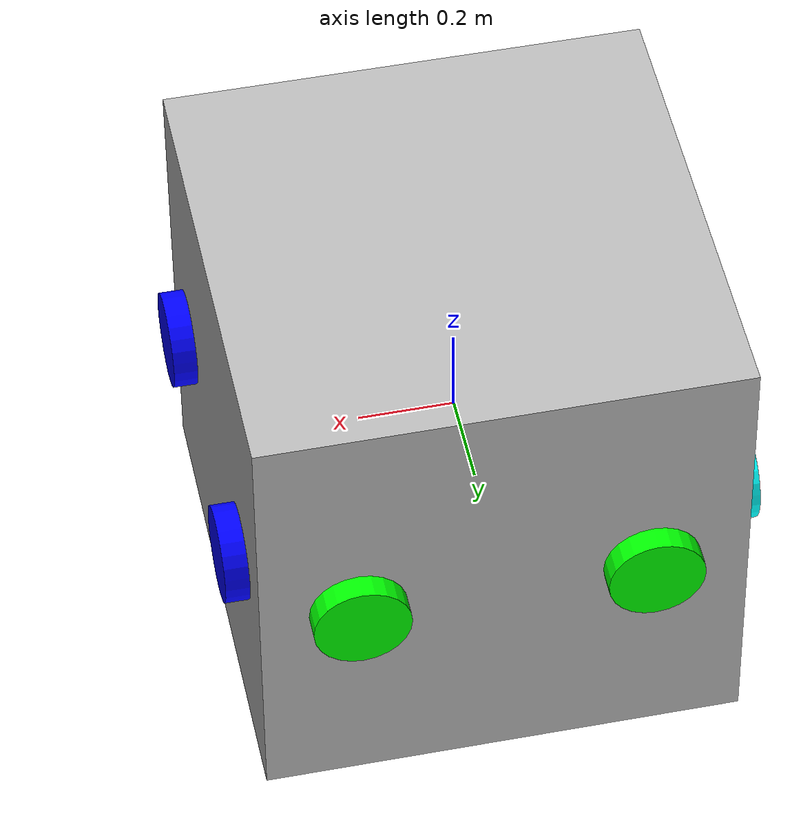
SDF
<?xml version="1.0" encoding="UTF-8"?>
<sdf version='1.9'>
<!-- This has eight thrusters and no arm-->
  <model name='free_flyer2'>
    <link name='base_link'>
      <inertial>
        <pose>0 0 0 0 0 0</pose>
        <mass>5</mass>
        <inertia>
          <ixx>10</ixx>
          <ixy>0</ixy>
          <ixz>0</ixz>
          <iyy>10</iyy>
          <iyz>0</iyz>
          <izz>10</izz>
        </inertia>
      </inertial>
      <collision name='base_link_collision'>
        <pose>0 0 0 0 0 0</pose>
        <geometry>
          <box>
            <size>1 1 1</size>
          </box>
        </geometry>
        <surface>
          <contact>
            <ode>
              <kp>100000</kp>
              <kd>100000</kd>
            </ode>
          </contact>
          <friction>
            <ode>
              <mu>0</mu>
              <mu2>0</mu2>
              <fdir1>0 0 1</fdir1>
            </ode>
          </friction>
        </surface>
      </collision>
      <visual name='base_link_visual'>
        <pose>0 0 0 0 0 0</pose>
        <geometry>
            <box>
                <size>1 1 1</size>
            </box>
        </geometry>
      </visual>
    </link>

    <!-- 0 : Move Left -->
    <joint name='thruster_left0_joint' type='fixed'>
      <pose relative_to='base_link'>0.3 -0.5 0 -1.5708 0 0</pose>
      <parent>base_link</parent>
      <child>thruster_left0</child>
      <axis>
        <dynamics>
          <spring_reference>0</spring_reference>
          <spring_stiffness>0</spring_stiffness>
        </dynamics>
        <xyz>0 0 1</xyz>
        <limit>
          <lower>-1e+16</lower>
          <upper>1e+16</upper>
        </limit>
      </axis>
      <physics>
        <ode>
          <limit>
            <cfm>0</cfm>
            <erp>0.2</erp>
          </limit>
        </ode>
      </physics>
    </joint>
    <link name='thruster_left0'>
      <pose relative_to='thruster_left0_joint'>0 0 0 0 0 0</pose>
      <inertial>
        <pose>0 0 0 0 0 0</pose>
        <mass>0.001</mass>
        <inertia>
          <ixx>1e-05</ixx>
          <ixy>0</ixy>
          <ixz>0</ixz>
          <iyy>1e-05</iyy>
          <iyz>0</iyz>
          <izz>1e-05</izz>
        </inertia>
      </inertial>
      <visual name="thruster_left0_visual">
        <pose> 0 0 0 0 0 0 </pose>
        <geometry>
            <cylinder>
                <length>0.1</length>
                <radius>0.1</radius>
            </cylinder>
        </geometry>
        <material>
            <ambient>0.1 0.1 0.1 1</ambient>
            <diffuse>1 0 0 1</diffuse>
            <specular>0 0 0 0</specular>
            <emissive>0 0 0 1</emissive>
        </material>
      </visual>
    </link>
    <plugin filename="gz-sim-spacecraft-thruster-model-system" name="gz::sim::systems::SpacecraftThrusterModel">
      <link_name>thruster_left0</link_name>
      <actuator_number>0</actuator_number><!--counterclockwise-->
      <duty_cycle_frequency>100</duty_cycle_frequency>
      <max_thrust>1.4</max_thrust>
      <topic>base6</topic>
      <sub_topic>command/duty_cycle</sub_topic>
    </plugin>
    <!-- 1 : Move Left -->
    <joint name='thruster_left1_joint' type='fixed'>
      <pose relative_to='base_link'>-0.3 -0.5 0 -1.5708 0 0</pose>
      <parent>base_link</parent>
      <child>thruster_left1</child>
      <axis>
        <dynamics>
          <spring_reference>0</spring_reference>
          <spring_stiffness>0</spring_stiffness>
        </dynamics>
        <xyz>0 0 1</xyz>
        <limit>
          <lower>-1e+16</lower>
          <upper>1e+16</upper>
        </limit>
      </axis>
      <physics>
        <ode>
          <limit>
            <cfm>0</cfm>
            <erp>0.2</erp>
          </limit>
        </ode>
      </physics>
    </joint>
    <link name='thruster_left1'>
      <pose relative_to='thruster_left1_joint'>0 0 0 0 0 0</pose>
      <inertial>
        <pose>0 0 0 0 0 0</pose>
        <mass>0.001</mass>
        <inertia>
          <ixx>1e-05</ixx>
          <ixy>0</ixy>
          <ixz>0</ixz>
          <iyy>1e-05</iyy>
          <iyz>0</iyz>
          <izz>1e-05</izz>
        </inertia>
      </inertial>
      <visual name="thruster_left1_visual">
        <pose> 0 0 0 0 0 0 </pose>
        <geometry>
            <cylinder>
                <length>0.1</length>
                <radius>0.1</radius>
            </cylinder>
        </geometry>
        <material>
            <ambient>0.1 0.1 0.1 1</ambient>
            <diffuse>1 0 0 1</diffuse>
            <specular>0 0 0 0</specular>
            <emissive>0 0 0 1</emissive>
        </material>
      </visual>
    </link>
    <plugin filename="gz-sim-spacecraft-thruster-model-system" name="gz::sim::systems::SpacecraftThrusterModel">
      <link_name>thruster_left1</link_name>
      <actuator_number>1</actuator_number> <!--clockwise-->
      <duty_cycle_frequency>100</duty_cycle_frequency>
      <max_thrust>1.4</max_thrust>
      <topic>base6</topic>
      <sub_topic>command/duty_cycle</sub_topic>
    </plugin>
<!--1: Move Right -->
    <joint name='thruster_right0_joint' type='fixed'>
      <pose relative_to='base_link'>0.3 0.5 0 1.5708 0 0</pose>
      <parent>base_link</parent>
      <child>thruster_right0</child>
      <axis>
        <dynamics>
          <spring_reference>0</spring_reference>
          <spring_stiffness>0</spring_stiffness>
        </dynamics>
        <xyz>0 0 1</xyz>
        <limit>
          <lower>-1e+16</lower>
          <upper>1e+16</upper>
        </limit>
      </axis>
      <physics>
        <ode>
          <limit>
            <cfm>0</cfm>
            <erp>0.2</erp>
          </limit>
        </ode>
      </physics>
    </joint>
    <link name='thruster_right0'>

      <pose relative_to='thruster_right0_joint'>0 0 0 0 0 0</pose>
      <inertial>
        <pose>0 0 0 0 0 0</pose>
        <mass>0.001</mass>
        <inertia>
          <ixx>1e-05</ixx>
          <ixy>0</ixy>
          <ixz>0</ixz>
          <iyy>1e-05</iyy>
          <iyz>0</iyz>
          <izz>1e-05</izz>
        </inertia>
      </inertial>
      <visual name="thruster_right0_visual">
        <pose> 0 0 0 0 0 0 </pose>
        <geometry>
            <cylinder>
                <length>0.1</length>
                <radius>0.1</radius>
            </cylinder>
        </geometry>
        <material>
            <ambient>0.1 0.1 0.1 1</ambient>
            <diffuse>0 1 0 1</diffuse>
            <specular>0 0 0 0</specular>
            <emissive>0 0 0 1</emissive>
        </material>
      </visual>
    </link>
    <plugin filename="gz-sim-spacecraft-thruster-model-system" name="gz::sim::systems::SpacecraftThrusterModel">
      <link_name>thruster_right0</link_name>
      <actuator_number>2</actuator_number> <!--clockwise-->
      <duty_cycle_frequency>100</duty_cycle_frequency>
      <topic>base6</topic>
      <max_thrust>1.4</max_thrust>
      <sub_topic>command/duty_cycle</sub_topic>
    </plugin>

    <joint name='thruster_right1_joint' type='fixed'>
      <pose relative_to='base_link'>-0.3 0.5 0 1.5708 0 0</pose>
      <parent>base_link</parent>
      <child>thruster_right1</child>
      <axis>
        <dynamics>
          <spring_reference>0</spring_reference>
          <spring_stiffness>0</spring_stiffness>
        </dynamics>
        <xyz>0 0 1</xyz>
        <limit>
          <lower>-1e+16</lower>
          <upper>1e+16</upper>
        </limit>
      </axis>
      <physics>
        <ode>
          <limit>
            <cfm>0</cfm>
            <erp>0.2</erp>
          </limit>
        </ode>
      </physics>
    </joint>
    <link name='thruster_right1'>

      <pose relative_to='thruster_right1_joint'>0 0 0 0 0 0</pose>
      <inertial>
        <pose>0 0 0 0 0 0</pose>
        <mass>0.001</mass>
        <inertia>
          <ixx>1e-05</ixx>
          <ixy>0</ixy>
          <ixz>0</ixz>
          <iyy>1e-05</iyy>
          <iyz>0</iyz>
          <izz>1e-05</izz>
        </inertia>
      </inertial>
      <visual name="thruster_right1_visual">
        <pose> 0 0 0 0 0 0 </pose>
        <geometry>
            <cylinder>
                <length>0.1</length>
                <radius>0.1</radius>
            </cylinder>
        </geometry>
        <material>
            <ambient>0.1 0.1 0.1 1</ambient>
            <diffuse>0 1 0 1</diffuse>
            <specular>0 0 0 0</specular>
            <emissive>0 0 0 1</emissive>
        </material>
      </visual>
    </link>
    <plugin filename="gz-sim-spacecraft-thruster-model-system" name="gz::sim::systems::SpacecraftThrusterModel">
      <link_name>thruster_right1</link_name>
      <actuator_number>3</actuator_number> <!--counterclockwise-->
      <duty_cycle_frequency>100</duty_cycle_frequency>
      <max_thrust>1.4</max_thrust>
      <topic>base6</topic>
      <sub_topic>command/duty_cycle</sub_topic>
    </plugin>

     <!--2: Move Forward -->
    <joint name='thruster_fwd0_joint' type='fixed'>
      <pose relative_to='base_link'>0.5 0.3 0 0 -1.5708 0</pose>
      <parent>base_link</parent>
      <child>thruster_fwd0</child>
      <axis>
        <dynamics>
          <spring_reference>0</spring_reference>
          <spring_stiffness>0</spring_stiffness>
        </dynamics>
        <xyz>0 0 1</xyz>
        <limit>
          <lower>-1e+16</lower>
          <upper>1e+16</upper>
        </limit>
      </axis>
      <physics>
        <ode>
          <limit>
            <cfm>0</cfm>
            <erp>0.2</erp>
          </limit>
        </ode>
      </physics>
    </joint>
    <link name='thruster_fwd0'>

      <pose relative_to='thruster_fwd0_joint'>0 0 0 0 0 0</pose>
      <inertial>
        <pose>0 0 0 0 0 0</pose>
        <mass>0.001</mass>
        <inertia>
          <ixx>1e-05</ixx>
          <ixy>0</ixy>
          <ixz>0</ixz>
          <iyy>1e-05</iyy>
          <iyz>0</iyz>
          <izz>1e-05</izz>
        </inertia>
      </inertial>
      <visual name="thruster_fwd0_visual">
        <pose> 0 0 0 0 0 0 </pose>
        <geometry>
            <cylinder>
                <length>0.1</length>
                <radius>0.1</radius>
            </cylinder>
        </geometry>
        <material>
            <ambient>0.1 0.1 0.1 1</ambient>
            <diffuse>0 0 1 1</diffuse>
            <specular>0 0 0 0</specular>
            <emissive>0 0 0 1</emissive>
        </material>
      </visual>
    </link>
    <plugin filename="gz-sim-spacecraft-thruster-model-system" name="gz::sim::systems::SpacecraftThrusterModel">
      <link_name>thruster_fwd0</link_name>
      <actuator_number>4</actuator_number> <!--counterclockwise-->
      <duty_cycle_frequency>100</duty_cycle_frequency>
      <max_thrust>1.4</max_thrust>
      <topic>base6</topic>
      <sub_topic>command/duty_cycle</sub_topic>
    </plugin>

    <joint name='thruster_fwd1_joint' type='fixed'>
      <pose relative_to='base_link'>0.5 -0.3 0 0 -1.5708 0</pose>
      <parent>base_link</parent>
      <child>thruster_fwd1</child>
      <axis>
        <dynamics>
          <spring_reference>0</spring_reference>
          <spring_stiffness>0</spring_stiffness>
        </dynamics>
        <xyz>0 0 1</xyz>
        <limit>
          <lower>-1e+16</lower>
          <upper>1e+16</upper>
        </limit>
      </axis>
      <physics>
        <ode>
          <limit>
            <cfm>0</cfm>
            <erp>0.2</erp>
          </limit>
        </ode>
      </physics>
    </joint>
    <link name='thruster_fwd1'>

      <pose relative_to='thruster_fwd1_joint'>0 0 0 0 0 0</pose>
      <inertial>
        <pose>0 0 0 0 0 0</pose>
        <mass>0.001</mass>
        <inertia>
          <ixx>1e-05</ixx>
          <ixy>0</ixy>
          <ixz>0</ixz>
          <iyy>1e-05</iyy>
          <iyz>0</iyz>
          <izz>1e-05</izz>
        </inertia>
      </inertial>
      <visual name="thruster_fwd1_visual">
        <pose> 0 0 0 0 0 0 </pose>
        <geometry>
            <cylinder>
                <length>0.1</length>
                <radius>0.1</radius>
            </cylinder>
        </geometry>
        <material>
            <ambient>0.1 0.1 0.1 1</ambient>
            <diffuse>0 0 1 1</diffuse>
            <specular>0 0 0 0</specular>
            <emissive>0 0 0 1</emissive>
        </material>
      </visual>
    </link>
    <plugin filename="gz-sim-spacecraft-thruster-model-system" name="gz::sim::systems::SpacecraftThrusterModel">
      <link_name>thruster_fwd1</link_name>
      <actuator_number>5</actuator_number><!--clockwise-->
      <duty_cycle_frequency>100</duty_cycle_frequency>
      <max_thrust>1.4</max_thrust>
      <topic>base6</topic>
      <sub_topic>command/duty_cycle</sub_topic>
    </plugin>
    <!--3. Move Backward -->
<joint name='thruster_back0_joint' type='fixed'>
      <pose relative_to='base_link'>-0.5 0.3 0 0 1.5708 0</pose>
      <parent>base_link</parent>
      <child>thruster_back0</child>
      <axis>
        <dynamics>
          <spring_reference>0</spring_reference>
          <spring_stiffness>0</spring_stiffness>
        </dynamics>
        <xyz>0 0 1</xyz>
        <limit>
          <lower>-1e+16</lower>
          <upper>1e+16</upper>
        </limit>
      </axis>
      <physics>
        <ode>
          <limit>
            <cfm>0</cfm>
            <erp>0.2</erp>
          </limit>
        </ode>
      </physics>
    </joint>
    <link name='thruster_back0'>

      <pose relative_to='thruster_back0_joint'>0 0 0 0 0 0</pose>
      <inertial>
        <pose>0 0 0 0 0 0</pose>
        <mass>0.001</mass>
        <inertia>
          <ixx>1e-05</ixx>
          <ixy>0</ixy>
          <ixz>0</ixz>
          <iyy>1e-05</iyy>
          <iyz>0</iyz>
          <izz>1e-05</izz>
        </inertia>
      </inertial>
      <visual name="thruster_back0_visual">
        <pose> 0 0 0 0 0 0 </pose>
        <geometry>
            <cylinder>
                <length>0.1</length>
                <radius>0.1</radius>
            </cylinder>
        </geometry>
        <material>
            <ambient>0.1 0.1 0.1 1</ambient>
            <diffuse>0 1 1 1</diffuse>
            <specular>0 0 0 0</specular>
            <emissive>0 0 0 1</emissive>
        </material>
      </visual>
    </link>
    <plugin filename="gz-sim-spacecraft-thruster-model-system" name="gz::sim::systems::SpacecraftThrusterModel">
      <link_name>thruster_back0</link_name>
      <actuator_number>6</actuator_number><!--clockwise-->
      <duty_cycle_frequency>100</duty_cycle_frequency>
      <max_thrust>1.4</max_thrust>
      <topic>base6</topic>
      <sub_topic>command/duty_cycle</sub_topic>
    </plugin>
   <joint name='thruster_back1_joint' type='fixed'>
      <pose relative_to='base_link'>-0.5 -0.3 0 0 1.5708 0</pose>
      <parent>base_link</parent>
      <child>thruster_back1</child>
      <axis>
        <dynamics>
          <spring_reference>0</spring_reference>
          <spring_stiffness>0</spring_stiffness>
        </dynamics>
        <xyz>0 0 1</xyz>
        <limit>
          <lower>-1e+16</lower>
          <upper>1e+16</upper>
        </limit>
      </axis>
      <physics>
        <ode>
          <limit>
            <cfm>0</cfm>
            <erp>0.2</erp>
          </limit>
        </ode>
      </physics>
    </joint>
    <link name='thruster_back1'>

      <pose relative_to='thruster_back1_joint'>0 0 0 0 0 0</pose>
      <inertial>
        <pose>0 0 0 0 0 0</pose>
        <mass>0.001</mass>
        <inertia>
          <ixx>1e-05</ixx>
          <ixy>0</ixy>
          <ixz>0</ixz>
          <iyy>1e-05</iyy>
          <iyz>0</iyz>
          <izz>1e-05</izz>
        </inertia>
      </inertial>
      <visual name="thruster_back1_visual">
        <pose> 0 0 0 0 0 0 </pose>
        <geometry>
            <cylinder>
                <length>0.1</length>
                <radius>0.1</radius>
            </cylinder>
        </geometry>
        <material>
            <ambient>0.1 0.1 0.1 1</ambient>
            <diffuse>0 1 1 1</diffuse>
            <specular>0 0 0 0</specular>
            <emissive>0 0 0 1</emissive>
        </material>
      </visual>
    </link>
    <plugin filename="gz-sim-spacecraft-thruster-model-system" name="gz::sim::systems::SpacecraftThrusterModel">
      <link_name>thruster_back1</link_name>
      <actuator_number>7</actuator_number><!--counterclockwise-->
      <duty_cycle_frequency>100</duty_cycle_frequency>
      <max_thrust>1.4</max_thrust>
      <topic>base6</topic>
      <sub_topic>command/duty_cycle</sub_topic>
    </plugin>

    <plugin
      filename="gz-sim-odometry-publisher-system"
      name="gz::sim::systems::OdometryPublisher">
      <robot_base_frame>base_link</robot_base_frame>
      <dimensions>2</dimensions>
    </plugin>
</model>
</sdf>
